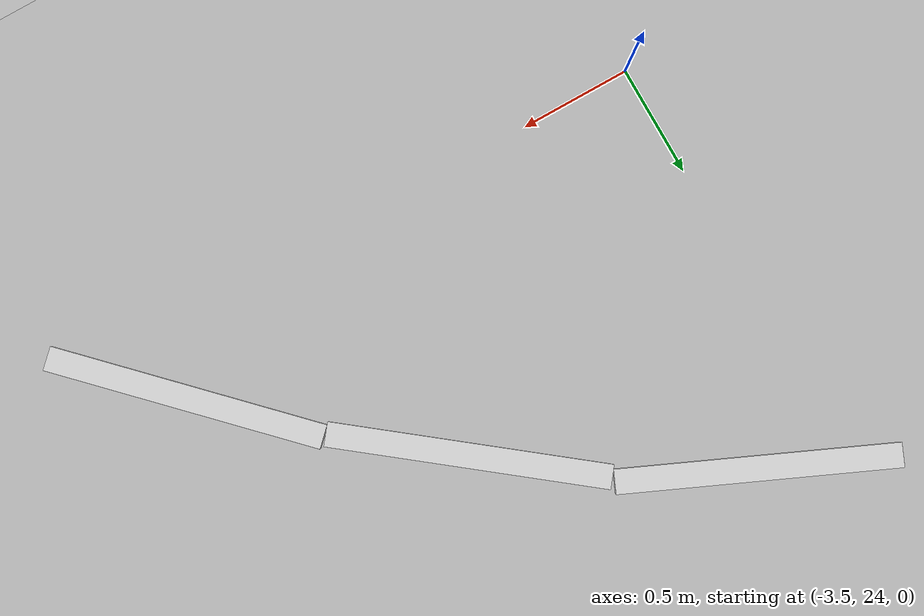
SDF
<sdf version="1.7">
 <world name="default">
  <model name="ground_plane">
   <static>1</static>
   <link name="link">
    <collision name="collision">
     <geometry><plane><normal>0 0 1</normal><size>100 100</size></plane></geometry>
     <surface><friction><ode><mu>100</mu><mu2>50</mu2></ode></friction></surface>
    </collision>
    <visual name="visual">
     <cast_shadows>0</cast_shadows>
     <geometry><plane><normal>0 0 1</normal><size>100 100</size></plane></geometry>
     <material>
      <script><uri>file://media/materials/scripts/gazebo.material</uri><name>Gazebo/Grey</name></script>
     </material>
    </visual>
   </link>
  </model>
  <model name="road_way_clone_clone_clone_clone_clone">
   <link name="link">
    <inertial>
     <mass>1</mass>
     <inertia>
      <ixx>0.166667</ixx>
      <ixy>0</ixy>
      <ixz>0</ixz>
      <iyy>0.166667</iyy>
      <iyz>0</iyz>
      <izz>0.166667</izz>
     </inertia>
    </inertial>
    <visual name="visual">
     <geometry><box><size>0.106644 1.22348 0.03129</size></box></geometry>
     <material>
      <script><name>Gazebo/White</name><uri>file://media/materials/scripts/gazebo.material</uri></script>
      <shader type="pixel"><normal_map>__default__</normal_map></shader>
      <ambient>1 1 1 1</ambient>
      <diffuse>1 1 1 1</diffuse>
      <specular>0 0 0 1</specular>
      <emissive>0 0 0 1</emissive>
     </material>
    </visual>
    <collision name="collision">
     <geometry><box><size>0.10644 1.22348 0.03129</size></box></geometry>
     <surface>
      <friction>
       <ode><mu>1</mu><mu2>1</mu2><fdir1>0 0 0</fdir1><slip1>0</slip1><slip2>0</slip2></ode>
       <torsional>
        <coefficient>1</coefficient>
        <patch_radius>0</patch_radius>
        <surface_radius>0</surface_radius>
        <use_patch_radius>1</use_patch_radius>
        <ode><slip>0</slip></ode>
       </torsional>
      </friction>
      <bounce><restitution_coefficient>0</restitution_coefficient><threshold>1e+06</threshold></bounce>
      <contact>
       <collide_without_contact>0</collide_without_contact>
       <collide_without_contact_bitmask>1</collide_without_contact_bitmask>
       <collide_bitmask>1</collide_bitmask>
       <ode>
        <soft_cfm>0</soft_cfm>
        <soft_erp>0.2</soft_erp>
        <kp>1e+13</kp>
        <kd>1</kd>
        <max_vel>0.01</max_vel>
        <min_depth>0</min_depth>
       </ode>
       <bullet>
        <split_impulse>1</split_impulse>
        <split_impulse_penetration_threshold>-0.01</split_impulse_penetration_threshold>
        <soft_cfm>0</soft_cfm>
        <soft_erp>0.2</soft_erp>
        <kp>1e+13</kp>
        <kd>1</kd>
       </bullet>
      </contact>
     </surface>
    </collision>
   </link>
   <static>0</static>
   <pose>-1.16894 24.3025 0.015638 1.1e-05 -0 0.780651</pose>
  </model>
  <model name="road_way_clone_clone_clone_clone_clone_clone">
   <link name="link">
    <inertial>
     <mass>1</mass>
     <inertia>
      <ixx>0.166667</ixx>
      <ixy>0</ixy>
      <ixz>0</ixz>
      <iyy>0.166667</iyy>
      <iyz>0</iyz>
      <izz>0.166667</izz>
     </inertia>
    </inertial>
    <visual name="visual">
     <geometry><box><size>0.106644 1.22348 0.03129</size></box></geometry>
     <material>
      <script><name>Gazebo/White</name><uri>file://media/materials/scripts/gazebo.material</uri></script>
      <shader type="pixel"><normal_map>__default__</normal_map></shader>
      <ambient>1 1 1 1</ambient>
      <diffuse>1 1 1 1</diffuse>
      <specular>0 0 0 1</specular>
      <emissive>0 0 0 1</emissive>
     </material>
    </visual>
    <collision name="collision">
     <geometry><box><size>0.10644 1.22348 0.03129</size></box></geometry>
     <surface>
      <friction>
       <ode><mu>1</mu><mu2>1</mu2><fdir1>0 0 0</fdir1><slip1>0</slip1><slip2>0</slip2></ode>
       <torsional>
        <coefficient>1</coefficient>
        <patch_radius>0</patch_radius>
        <surface_radius>0</surface_radius>
        <use_patch_radius>1</use_patch_radius>
        <ode><slip>0</slip></ode>
       </torsional>
      </friction>
      <bounce><restitution_coefficient>0</restitution_coefficient><threshold>1e+06</threshold></bounce>
      <contact>
       <collide_without_contact>0</collide_without_contact>
       <collide_without_contact_bitmask>1</collide_without_contact_bitmask>
       <collide_bitmask>1</collide_bitmask>
       <ode>
        <soft_cfm>0</soft_cfm>
        <soft_erp>0.2</soft_erp>
        <kp>1e+13</kp>
        <kd>1</kd>
        <max_vel>0.01</max_vel>
        <min_depth>0</min_depth>
       </ode>
       <bullet>
        <split_impulse>1</split_impulse>
        <split_impulse_penetration_threshold>-0.01</split_impulse_penetration_threshold>
        <soft_cfm>0</soft_cfm>
        <soft_erp>0.2</soft_erp>
        <kp>1e+13</kp>
        <kd>1</kd>
       </bullet>
      </contact>
     </surface>
    </collision>
   </link>
   <static>0</static>
   <pose>-2.09518 25.1072 0.015638 1.1e-05 -0 0.907832</pose>
  </model>
  <model name="road_way_clone_clone_clone_clone_clone_clone_0">
   <link name="link">
    <inertial>
     <mass>1</mass>
     <inertia>
      <ixx>0.166667</ixx>
      <ixy>0</ixy>
      <ixz>0</ixz>
      <iyy>0.166667</iyy>
      <iyz>0</iyz>
      <izz>0.166667</izz>
     </inertia>
    </inertial>
    <visual name="visual">
     <geometry><box><size>0.106644 1.22348 0.03129</size></box></geometry>
     <material>
      <script><name>Gazebo/White</name><uri>file://media/materials/scripts/gazebo.material</uri></script>
      <shader type="pixel"><normal_map>__default__</normal_map></shader>
      <ambient>1 1 1 1</ambient>
      <diffuse>1 1 1 1</diffuse>
      <specular>0 0 0 1</specular>
      <emissive>0 0 0 1</emissive>
     </material>
    </visual>
    <collision name="collision">
     <geometry><box><size>0.10644 1.22348 0.03129</size></box></geometry>
     <surface>
      <friction>
       <ode><mu>1</mu><mu2>1</mu2><fdir1>0 0 0</fdir1><slip1>0</slip1><slip2>0</slip2></ode>
       <torsional>
        <coefficient>1</coefficient>
        <patch_radius>0</patch_radius>
        <surface_radius>0</surface_radius>
        <use_patch_radius>1</use_patch_radius>
        <ode><slip>0</slip></ode>
       </torsional>
      </friction>
      <bounce><restitution_coefficient>0</restitution_coefficient><threshold>1e+06</threshold></bounce>
      <contact>
       <collide_without_contact>0</collide_without_contact>
       <collide_without_contact_bitmask>1</collide_without_contact_bitmask>
       <collide_bitmask>1</collide_bitmask>
       <ode>
        <soft_cfm>0</soft_cfm>
        <soft_erp>0.2</soft_erp>
        <kp>1e+13</kp>
        <kd>1</kd>
        <max_vel>0.01</max_vel>
        <min_depth>0</min_depth>
       </ode>
       <bullet>
        <split_impulse>1</split_impulse>
        <split_impulse_penetration_threshold>-0.01</split_impulse_penetration_threshold>
        <soft_cfm>0</soft_cfm>
        <soft_erp>0.2</soft_erp>
        <kp>1e+13</kp>
        <kd>1</kd>
       </bullet>
      </contact>
     </surface>
    </collision>
   </link>
   <static>0</static>
   <pose>-3.13391 25.7568 0.015638 1.1e-05 -0 1.14894</pose>
  </model>
 </world>
</sdf>
